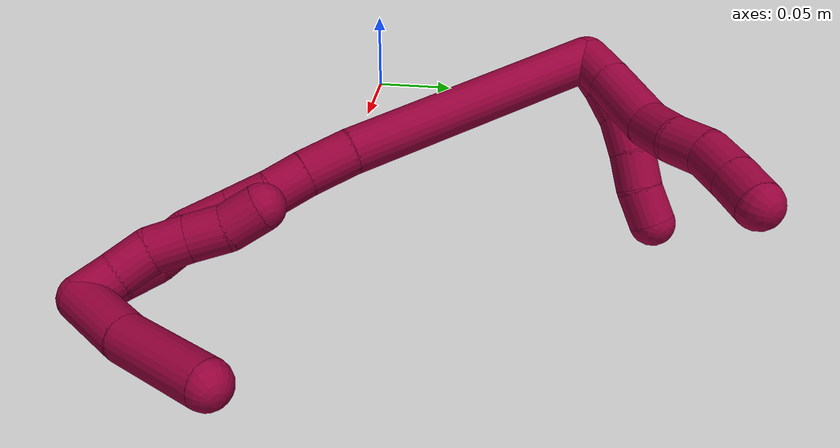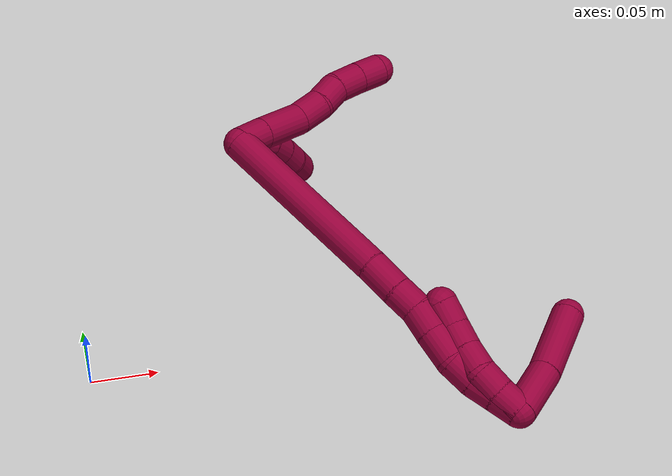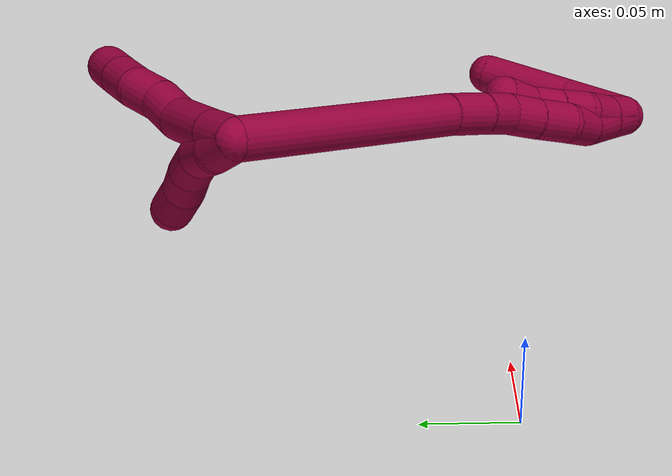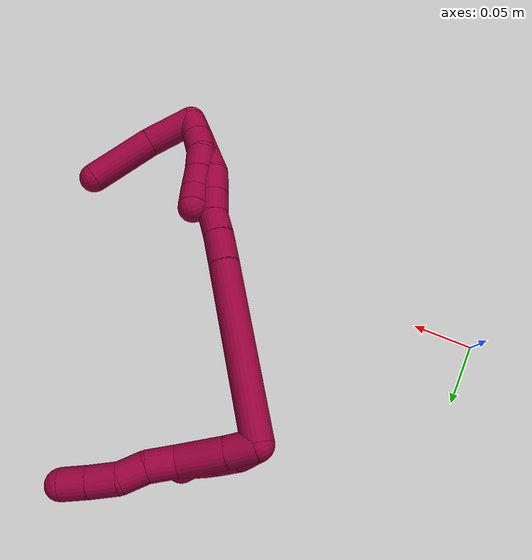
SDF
<sdf version="1.7">
 <world name="default">
  <model name="8">
   <static>0</static>
   <link name="8">
    <collision name="collision-cylinder-e_1_2_8">
     <pose>0.002093 -0.000808 0.011535 0.06992 0.179036 0.006278</pose>
     <geometry><cylinder><radius>0.0125</radius><length>0.023502</length></cylinder></geometry>
     <surface>
      <friction><ode><mu>1.16</mu><mu2>1.16</mu2><slip1>0</slip1><slip2>0</slip2></ode></friction>
      <contact><ode><kp>1e+06</kp><kd>1</kd><max_vel>0</max_vel><min_depth>0.001</min_depth></ode></contact>
     </surface>
    </collision>
    <visual name="visual-cylinder-e_1_2_8">
     <pose>0.002093 -0.000808 0.011535 0.06992 0.179036 0.006278</pose>
     <geometry><cylinder><radius>0.0125</radius><length>0.023502</length></cylinder></geometry>
     <material><ambient>0.584314 0 0.227451 1</ambient></material>
    </visual>
    <collision name="collision-cylinder-e_2_8_9">
     <pose>0.007811 -0.003916 0.041902 0.121554 0.188817 0.011524</pose>
     <geometry><cylinder><radius>0.0125</radius><length>0.038631</length></cylinder></geometry>
     <surface>
      <friction><ode><mu>1.16</mu><mu2>1.16</mu2><slip1>0</slip1><slip2>0</slip2></ode></friction>
      <contact><ode><kp>1e+06</kp><kd>1</kd><max_vel>0</max_vel><min_depth>0.001</min_depth></ode></contact>
     </surface>
    </collision>
    <visual name="visual-cylinder-e_2_8_9">
     <pose>0.007811 -0.003916 0.041902 0.121554 0.188817 0.011524</pose>
     <geometry><cylinder><radius>0.0125</radius><length>0.038631</length></cylinder></geometry>
     <material><ambient>0.584314 0 0.227451 1</ambient></material>
    </visual>
    <collision name="collision-cylinder-e_3_9_10">
     <pose>0.010314 -0.008375 0.071959 0.189929 -0.097839 -0.009327</pose>
     <geometry><cylinder><radius>0.0125</radius><length>0.022971</length></cylinder></geometry>
     <surface>
      <friction><ode><mu>1.16</mu><mu2>1.16</mu2><slip1>0</slip1><slip2>0</slip2></ode></friction>
      <contact><ode><kp>1e+06</kp><kd>1</kd><max_vel>0</max_vel><min_depth>0.001</min_depth></ode></contact>
     </surface>
    </collision>
    <visual name="visual-cylinder-e_3_9_10">
     <pose>0.010314 -0.008375 0.071959 0.189929 -0.097839 -0.009327</pose>
     <geometry><cylinder><radius>0.0125</radius><length>0.022971</length></cylinder></geometry>
     <material><ambient>0.584314 0 0.227451 1</ambient></material>
    </visual>
    <collision name="collision-cylinder-e_4_10_11">
     <pose>0.007932 -0.009996 0.093551 -0.05172 -0.120849 0.00313</pose>
     <geometry><cylinder><radius>0.0125</radius><length>0.020914</length></cylinder></geometry>
     <surface>
      <friction><ode><mu>1.16</mu><mu2>1.16</mu2><slip1>0</slip1><slip2>0</slip2></ode></friction>
      <contact><ode><kp>1e+06</kp><kd>1</kd><max_vel>0</max_vel><min_depth>0.001</min_depth></ode></contact>
     </surface>
    </collision>
    <visual name="visual-cylinder-e_4_10_11">
     <pose>0.007932 -0.009996 0.093551 -0.05172 -0.120849 0.00313</pose>
     <geometry><cylinder><radius>0.0125</radius><length>0.020914</length></cylinder></geometry>
     <material><ambient>0.584314 0 0.227451 1</ambient></material>
    </visual>
    <collision name="collision-cylinder-e_5_11_12">
     <pose>0.007672 -0.011716 0.115088 0.199356 0.087624 0.008769</pose>
     <geometry><cylinder><radius>0.0125</radius><length>0.022878</length></cylinder></geometry>
     <surface>
      <friction><ode><mu>1.16</mu><mu2>1.16</mu2><slip1>0</slip1><slip2>0</slip2></ode></friction>
      <contact><ode><kp>1e+06</kp><kd>1</kd><max_vel>0</max_vel><min_depth>0.001</min_depth></ode></contact>
     </surface>
    </collision>
    <visual name="visual-cylinder-e_5_11_12">
     <pose>0.007672 -0.011716 0.115088 0.199356 0.087624 0.008769</pose>
     <geometry><cylinder><radius>0.0125</radius><length>0.022878</length></cylinder></geometry>
     <material><ambient>0.584314 0 0.227451 1</ambient></material>
    </visual>
    <collision name="collision-cylinder-e_6_12_6">
     <pose>0.00983 -0.016436 0.136452 0.237093 0.109868 0.013099</pose>
     <geometry><cylinder><radius>0.0125</radius><length>0.021103</length></cylinder></geometry>
     <surface>
      <friction><ode><mu>1.16</mu><mu2>1.16</mu2><slip1>0</slip1><slip2>0</slip2></ode></friction>
      <contact><ode><kp>1e+06</kp><kd>1</kd><max_vel>0</max_vel><min_depth>0.001</min_depth></ode></contact>
     </surface>
    </collision>
    <visual name="visual-cylinder-e_6_12_6">
     <pose>0.00983 -0.016436 0.136452 0.237093 0.109868 0.013099</pose>
     <geometry><cylinder><radius>0.0125</radius><length>0.021103</length></cylinder></geometry>
     <material><ambient>0.584314 0 0.227451 1</ambient></material>
    </visual>
    <collision name="collision-cylinder-e_1_2_13">
     <pose>0.005495 0.002236 0.00805 -0.270894 0.581775 -0.081555</pose>
     <geometry><cylinder><radius>0.0125</radius><length>0.02</length></cylinder></geometry>
     <surface>
      <friction><ode><mu>1.16</mu><mu2>1.16</mu2><slip1>0</slip1><slip2>0</slip2></ode></friction>
      <contact><ode><kp>1e+06</kp><kd>1</kd><max_vel>0</max_vel><min_depth>0.001</min_depth></ode></contact>
     </surface>
    </collision>
    <visual name="visual-cylinder-e_1_2_13">
     <pose>0.005495 0.002236 0.00805 -0.270894 0.581775 -0.081555</pose>
     <geometry><cylinder><radius>0.0125</radius><length>0.02</length></cylinder></geometry>
     <material><ambient>0.584314 0 0.227451 1</ambient></material>
    </visual>
    <collision name="collision-cylinder-e_2_13_14">
     <pose>0.015983 0.004245 0.024762 0.026096 0.522813 0.006982</pose>
     <geometry><cylinder><radius>0.0125</radius><length>0.02</length></cylinder></geometry>
     <surface>
      <friction><ode><mu>1.16</mu><mu2>1.16</mu2><slip1>0</slip1><slip2>0</slip2></ode></friction>
      <contact><ode><kp>1e+06</kp><kd>1</kd><max_vel>0</max_vel><min_depth>0.001</min_depth></ode></contact>
     </surface>
    </collision>
    <visual name="visual-cylinder-e_2_13_14">
     <pose>0.015983 0.004245 0.024762 0.026096 0.522813 0.006982</pose>
     <geometry><cylinder><radius>0.0125</radius><length>0.02</length></cylinder></geometry>
     <material><ambient>0.584314 0 0.227451 1</ambient></material>
    </visual>
    <collision name="collision-cylinder-e_3_14_15">
     <pose>0.028462 0.004453 0.04004 -0.065488 0.845861 -0.029484</pose>
     <geometry><cylinder><radius>0.0125</radius><length>0.02</length></cylinder></geometry>
     <surface>
      <friction><ode><mu>1.16</mu><mu2>1.16</mu2><slip1>0</slip1><slip2>0</slip2></ode></friction>
      <contact><ode><kp>1e+06</kp><kd>1</kd><max_vel>0</max_vel><min_depth>0.001</min_depth></ode></contact>
     </surface>
    </collision>
    <visual name="visual-cylinder-e_3_14_15">
     <pose>0.028462 0.004453 0.04004 -0.065488 0.845861 -0.029484</pose>
     <geometry><cylinder><radius>0.0125</radius><length>0.02</length></cylinder></geometry>
     <material><ambient>0.584314 0 0.227451 1</ambient></material>
    </visual>
    <collision name="collision-cylinder-e_4_15_16">
     <pose>0.044186 0.005305 0.052309 -0.073706 0.968106 -0.038765</pose>
     <geometry><cylinder><radius>0.0125</radius><length>0.02</length></cylinder></geometry>
     <surface>
      <friction><ode><mu>1.16</mu><mu2>1.16</mu2><slip1>0</slip1><slip2>0</slip2></ode></friction>
      <contact><ode><kp>1e+06</kp><kd>1</kd><max_vel>0</max_vel><min_depth>0.001</min_depth></ode></contact>
     </surface>
    </collision>
    <visual name="visual-cylinder-e_4_15_16">
     <pose>0.044186 0.005305 0.052309 -0.073706 0.968106 -0.038765</pose>
     <geometry><cylinder><radius>0.0125</radius><length>0.02</length></cylinder></geometry>
     <material><ambient>0.584314 0 0.227451 1</ambient></material>
    </visual>
    <collision name="collision-cylinder-e_5_16_5">
     <pose>0.060194 0.007848 0.063887 -0.344518 0.889992 -0.165566</pose>
     <geometry><cylinder><radius>0.0125</radius><length>0.02</length></cylinder></geometry>
     <surface>
      <friction><ode><mu>1.16</mu><mu2>1.16</mu2><slip1>0</slip1><slip2>0</slip2></ode></friction>
      <contact><ode><kp>1e+06</kp><kd>1</kd><max_vel>0</max_vel><min_depth>0.001</min_depth></ode></contact>
     </surface>
    </collision>
    <visual name="visual-cylinder-e_5_16_5">
     <pose>0.060194 0.007848 0.063887 -0.344518 0.889992 -0.165566</pose>
     <geometry><cylinder><radius>0.0125</radius><length>0.02</length></cylinder></geometry>
     <material><ambient>0.584314 0 0.227451 1</ambient></material>
    </visual>
    <collision name="collision-cylinder-e_1_2_17">
     <pose>0.026861 -0.066695 -0.009108 1.70651 0.379678 0.433437</pose>
     <geometry><cylinder><radius>0.0125</radius><length>0.144952</length></cylinder></geometry>
     <surface>
      <friction><ode><mu>1.16</mu><mu2>1.16</mu2><slip1>0</slip1><slip2>0</slip2></ode></friction>
      <contact><ode><kp>1e+06</kp><kd>1</kd><max_vel>0</max_vel><min_depth>0.001</min_depth></ode></contact>
     </surface>
    </collision>
    <visual name="visual-cylinder-e_1_2_17">
     <pose>0.026861 -0.066695 -0.009108 1.70651 0.379678 0.433437</pose>
     <geometry><cylinder><radius>0.0125</radius><length>0.144952</length></cylinder></geometry>
     <material><ambient>0.584314 0 0.227451 1</ambient></material>
    </visual>
    <collision name="collision-cylinder-e_2_17_18">
     <pose>0.059717 -0.145427 -0.019695 1.69312 0.459123 0.516537</pose>
     <geometry><cylinder><radius>0.0125</radius><length>0.027056</length></cylinder></geometry>
     <surface>
      <friction><ode><mu>1.16</mu><mu2>1.16</mu2><slip1>0</slip1><slip2>0</slip2></ode></friction>
      <contact><ode><kp>1e+06</kp><kd>1</kd><max_vel>0</max_vel><min_depth>0.001</min_depth></ode></contact>
     </surface>
    </collision>
    <visual name="visual-cylinder-e_2_17_18">
     <pose>0.059717 -0.145427 -0.019695 1.69312 0.459123 0.516537</pose>
     <geometry><cylinder><radius>0.0125</radius><length>0.027056</length></cylinder></geometry>
     <material><ambient>0.584314 0 0.227451 1</ambient></material>
    </visual>
    <collision name="collision-cylinder-e_3_18_19">
     <pose>0.070558 -0.166286 -0.021666 1.62645 0.501583 0.529015</pose>
     <geometry><cylinder><radius>0.0125</radius><length>0.020155</length></cylinder></geometry>
     <surface>
      <friction><ode><mu>1.16</mu><mu2>1.16</mu2><slip1>0</slip1><slip2>0</slip2></ode></friction>
      <contact><ode><kp>1e+06</kp><kd>1</kd><max_vel>0</max_vel><min_depth>0.001</min_depth></ode></contact>
     </surface>
    </collision>
    <visual name="visual-cylinder-e_3_18_19">
     <pose>0.070558 -0.166286 -0.021666 1.62645 0.501583 0.529015</pose>
     <geometry><cylinder><radius>0.0125</radius><length>0.020155</length></cylinder></geometry>
     <material><ambient>0.584314 0 0.227451 1</ambient></material>
    </visual>
    <collision name="collision-cylinder-e_4_19_20">
     <pose>0.081107 -0.183699 -0.02498 1.88821 0.562745 0.759627</pose>
     <geometry><cylinder><radius>0.0125</radius><length>0.021381</length></cylinder></geometry>
     <surface>
      <friction><ode><mu>1.16</mu><mu2>1.16</mu2><slip1>0</slip1><slip2>0</slip2></ode></friction>
      <contact><ode><kp>1e+06</kp><kd>1</kd><max_vel>0</max_vel><min_depth>0.001</min_depth></ode></contact>
     </surface>
    </collision>
    <visual name="visual-cylinder-e_4_19_20">
     <pose>0.081107 -0.183699 -0.02498 1.88821 0.562745 0.759627</pose>
     <geometry><cylinder><radius>0.0125</radius><length>0.021381</length></cylinder></geometry>
     <material><ambient>0.584314 0 0.227451 1</ambient></material>
    </visual>
    <collision name="collision-cylinder-e_5_20_21">
     <pose>0.093129 -0.202454 -0.030766 1.85451 0.538077 0.704537</pose>
     <geometry><cylinder><radius>0.0125</radius><length>0.024659</length></cylinder></geometry>
     <surface>
      <friction><ode><mu>1.16</mu><mu2>1.16</mu2><slip1>0</slip1><slip2>0</slip2></ode></friction>
      <contact><ode><kp>1e+06</kp><kd>1</kd><max_vel>0</max_vel><min_depth>0.001</min_depth></ode></contact>
     </surface>
    </collision>
    <visual name="visual-cylinder-e_5_20_21">
     <pose>0.093129 -0.202454 -0.030766 1.85451 0.538077 0.704537</pose>
     <geometry><cylinder><radius>0.0125</radius><length>0.024659</length></cylinder></geometry>
     <material><ambient>0.584314 0 0.227451 1</ambient></material>
    </visual>
    <collision name="collision-cylinder-e_6_21_22">
     <pose>0.105853 -0.221364 -0.033207 1.51118 0.631255 0.59689</pose>
     <geometry><cylinder><radius>0.0125</radius><length>0.021707</length></cylinder></geometry>
     <surface>
      <friction><ode><mu>1.16</mu><mu2>1.16</mu2><slip1>0</slip1><slip2>0</slip2></ode></friction>
      <contact><ode><kp>1e+06</kp><kd>1</kd><max_vel>0</max_vel><min_depth>0.001</min_depth></ode></contact>
     </surface>
    </collision>
    <visual name="visual-cylinder-e_6_21_22">
     <pose>0.105853 -0.221364 -0.033207 1.51118 0.631255 0.59689</pose>
     <geometry><cylinder><radius>0.0125</radius><length>0.021707</length></cylinder></geometry>
     <material><ambient>0.584314 0 0.227451 1</ambient></material>
    </visual>
    <collision name="collision-cylinder-e_7_22_23">
     <pose>0.115674 -0.239501 -0.032153 1.51422 0.348361 0.329543</pose>
     <geometry><cylinder><radius>0.0125</radius><length>0.020014</length></cylinder></geometry>
     <surface>
      <friction><ode><mu>1.16</mu><mu2>1.16</mu2><slip1>0</slip1><slip2>0</slip2></ode></friction>
      <contact><ode><kp>1e+06</kp><kd>1</kd><max_vel>0</max_vel><min_depth>0.001</min_depth></ode></contact>
     </surface>
    </collision>
    <visual name="visual-cylinder-e_7_22_23">
     <pose>0.115674 -0.239501 -0.032153 1.51422 0.348361 0.329543</pose>
     <geometry><cylinder><radius>0.0125</radius><length>0.020014</length></cylinder></geometry>
     <material><ambient>0.584314 0 0.227451 1</ambient></material>
    </visual>
    <collision name="collision-cylinder-e_8_23_1">
     <pose>0.122832 -0.258179 -0.030904 1.49365 0.381981 0.354207</pose>
     <geometry><cylinder><radius>0.0125</radius><length>0.020076</length></cylinder></geometry>
     <surface>
      <friction><ode><mu>1.16</mu><mu2>1.16</mu2><slip1>0</slip1><slip2>0</slip2></ode></friction>
      <contact><ode><kp>1e+06</kp><kd>1</kd><max_vel>0</max_vel><min_depth>0.001</min_depth></ode></contact>
     </surface>
    </collision>
    <visual name="visual-cylinder-e_8_23_1">
     <pose>0.122832 -0.258179 -0.030904 1.49365 0.381981 0.354207</pose>
     <geometry><cylinder><radius>0.0125</radius><length>0.020076</length></cylinder></geometry>
     <material><ambient>0.584314 0 0.227451 1</ambient></material>
    </visual>
    <collision name="collision-cylinder-e_1_1_24">
     <pose>0.125028 -0.264157 -0.009317 -0.157214 -0.073036 0.005756</pose>
     <geometry><cylinder><radius>0.0125</radius><length>0.042372</length></cylinder></geometry>
     <surface>
      <friction><ode><mu>1.16</mu><mu2>1.16</mu2><slip1>0</slip1><slip2>0</slip2></ode></friction>
      <contact><ode><kp>1e+06</kp><kd>1</kd><max_vel>0</max_vel><min_depth>0.001</min_depth></ode></contact>
     </surface>
    </collision>
    <visual name="visual-cylinder-e_1_1_24">
     <pose>0.125028 -0.264157 -0.009317 -0.157214 -0.073036 0.005756</pose>
     <geometry><cylinder><radius>0.0125</radius><length>0.042372</length></cylinder></geometry>
     <material><ambient>0.584314 0 0.227451 1</ambient></material>
    </visual>
    <collision name="collision-cylinder-e_2_24_4">
     <pose>0.118743 -0.253199 0.038925 -0.272516 -0.165214 0.022703</pose>
     <geometry><cylinder><radius>0.0125</radius><length>0.057628</length></cylinder></geometry>
     <surface>
      <friction><ode><mu>1.16</mu><mu2>1.16</mu2><slip1>0</slip1><slip2>0</slip2></ode></friction>
      <contact><ode><kp>1e+06</kp><kd>1</kd><max_vel>0</max_vel><min_depth>0.001</min_depth></ode></contact>
     </surface>
    </collision>
    <visual name="visual-cylinder-e_2_24_4">
     <pose>0.118743 -0.253199 0.038925 -0.272516 -0.165214 0.022703</pose>
     <geometry><cylinder><radius>0.0125</radius><length>0.057628</length></cylinder></geometry>
     <material><ambient>0.584314 0 0.227451 1</ambient></material>
    </visual>
    <collision name="collision-cylinder-e_1_1_25">
     <pose>0.12141 -0.258904 -0.03038 -1.59348 -0.542614 0.554441</pose>
     <geometry><cylinder><radius>0.0125</radius><length>0.02</length></cylinder></geometry>
     <surface>
      <friction><ode><mu>1.16</mu><mu2>1.16</mu2><slip1>0</slip1><slip2>0</slip2></ode></friction>
      <contact><ode><kp>1e+06</kp><kd>1</kd><max_vel>0</max_vel><min_depth>0.001</min_depth></ode></contact>
     </surface>
    </collision>
    <visual name="visual-cylinder-e_1_1_25">
     <pose>0.12141 -0.258904 -0.03038 -1.59348 -0.542614 0.554441</pose>
     <geometry><cylinder><radius>0.0125</radius><length>0.02</length></cylinder></geometry>
     <material><ambient>0.584314 0 0.227451 1</ambient></material>
    </visual>
    <collision name="collision-cylinder-e_2_25_26">
     <pose>0.110422 -0.242226 -0.030136 -1.51686 -0.621704 0.590962</pose>
     <geometry><cylinder><radius>0.0125</radius><length>0.02</length></cylinder></geometry>
     <surface>
      <friction><ode><mu>1.16</mu><mu2>1.16</mu2><slip1>0</slip1><slip2>0</slip2></ode></friction>
      <contact><ode><kp>1e+06</kp><kd>1</kd><max_vel>0</max_vel><min_depth>0.001</min_depth></ode></contact>
     </surface>
    </collision>
    <visual name="visual-cylinder-e_2_25_26">
     <pose>0.110422 -0.242226 -0.030136 -1.51686 -0.621704 0.590962</pose>
     <geometry><cylinder><radius>0.0125</radius><length>0.02</length></cylinder></geometry>
     <material><ambient>0.584314 0 0.227451 1</ambient></material>
    </visual>
    <collision name="collision-cylinder-e_3_26_27">
     <pose>0.100316 -0.225735 -0.0263 -1.18528 -0.442481 0.300633</pose>
     <geometry><cylinder><radius>0.0125</radius><length>0.02</length></cylinder></geometry>
     <surface>
      <friction><ode><mu>1.16</mu><mu2>1.16</mu2><slip1>0</slip1><slip2>0</slip2></ode></friction>
      <contact><ode><kp>1e+06</kp><kd>1</kd><max_vel>0</max_vel><min_depth>0.001</min_depth></ode></contact>
     </surface>
    </collision>
    <visual name="visual-cylinder-e_3_26_27">
     <pose>0.100316 -0.225735 -0.0263 -1.18528 -0.442481 0.300633</pose>
     <geometry><cylinder><radius>0.0125</radius><length>0.02</length></cylinder></geometry>
     <material><ambient>0.584314 0 0.227451 1</ambient></material>
    </visual>
    <collision name="collision-cylinder-e_4_27_28">
     <pose>0.091741 -0.209364 -0.018705 -1.08757 -0.44374 0.271098</pose>
     <geometry><cylinder><radius>0.0125</radius><length>0.02</length></cylinder></geometry>
     <surface>
      <friction><ode><mu>1.16</mu><mu2>1.16</mu2><slip1>0</slip1><slip2>0</slip2></ode></friction>
      <contact><ode><kp>1e+06</kp><kd>1</kd><max_vel>0</max_vel><min_depth>0.001</min_depth></ode></contact>
     </surface>
    </collision>
    <visual name="visual-cylinder-e_4_27_28">
     <pose>0.091741 -0.209364 -0.018705 -1.08757 -0.44374 0.271098</pose>
     <geometry><cylinder><radius>0.0125</radius><length>0.02</length></cylinder></geometry>
     <material><ambient>0.584314 0 0.227451 1</ambient></material>
    </visual>
    <collision name="collision-cylinder-e_5_28_3">
     <pose>0.080967 -0.194333 -0.011587 -1.17704 -0.70501 0.481521</pose>
     <geometry><cylinder><radius>0.0125</radius><length>0.02</length></cylinder></geometry>
     <surface>
      <friction><ode><mu>1.16</mu><mu2>1.16</mu2><slip1>0</slip1><slip2>0</slip2></ode></friction>
      <contact><ode><kp>1e+06</kp><kd>1</kd><max_vel>0</max_vel><min_depth>0.001</min_depth></ode></contact>
     </surface>
    </collision>
    <visual name="visual-cylinder-e_5_28_3">
     <pose>0.080967 -0.194333 -0.011587 -1.17704 -0.70501 0.481521</pose>
     <geometry><cylinder><radius>0.0125</radius><length>0.02</length></cylinder></geometry>
     <material><ambient>0.584314 0 0.227451 1</ambient></material>
    </visual>
    <collision name="collision-sphere-3">
     <pose>0.074487 -0.1873 -0.008665 0 -0 0</pose>
     <geometry><sphere><radius>0.0125</radius></sphere></geometry>
     <surface>
      <friction><ode><mu>1.16</mu><mu2>1.16</mu2><slip1>0</slip1><slip2>0</slip2></ode></friction>
      <contact><ode><kp>1e+06</kp><kd>1</kd><max_vel>0</max_vel><min_depth>0.001</min_depth></ode></contact>
     </surface>
    </collision>
    <visual name="visual-sphere-3">
     <pose>0.074487 -0.1873 -0.008665 0 -0 0</pose>
     <geometry><sphere><radius>0.0125</radius></sphere></geometry>
     <material><ambient>0.584314 0 0.227451 1</ambient></material>
    </visual>
    <collision name="collision-sphere-28">
     <pose>0.087448 -0.201367 -0.014509 0 -0 0</pose>
     <geometry><sphere><radius>0.0125</radius></sphere></geometry>
     <surface>
      <friction><ode><mu>1.16</mu><mu2>1.16</mu2><slip1>0</slip1><slip2>0</slip2></ode></friction>
      <contact><ode><kp>1e+06</kp><kd>1</kd><max_vel>0</max_vel><min_depth>0.001</min_depth></ode></contact>
     </surface>
    </collision>
    <visual name="visual-sphere-28">
     <pose>0.087448 -0.201367 -0.014509 0 -0 0</pose>
     <geometry><sphere><radius>0.0125</radius></sphere></geometry>
     <material><ambient>0.584314 0 0.227451 1</ambient></material>
    </visual>
    <collision name="collision-sphere-27">
     <pose>0.096034 -0.217361 -0.022901 0 -0 0</pose>
     <geometry><sphere><radius>0.0125</radius></sphere></geometry>
     <surface>
      <friction><ode><mu>1.16</mu><mu2>1.16</mu2><slip1>0</slip1><slip2>0</slip2></ode></friction>
      <contact><ode><kp>1e+06</kp><kd>1</kd><max_vel>0</max_vel><min_depth>0.001</min_depth></ode></contact>
     </surface>
    </collision>
    <visual name="visual-sphere-27">
     <pose>0.096034 -0.217361 -0.022901 0 -0 0</pose>
     <geometry><sphere><radius>0.0125</radius></sphere></geometry>
     <material><ambient>0.584314 0 0.227451 1</ambient></material>
    </visual>
    <collision name="collision-sphere-26">
     <pose>0.104598 -0.234109 -0.029698 0 -0 0</pose>
     <geometry><sphere><radius>0.0125</radius></sphere></geometry>
     <surface>
      <friction><ode><mu>1.16</mu><mu2>1.16</mu2><slip1>0</slip1><slip2>0</slip2></ode></friction>
      <contact><ode><kp>1e+06</kp><kd>1</kd><max_vel>0</max_vel><min_depth>0.001</min_depth></ode></contact>
     </surface>
    </collision>
    <visual name="visual-sphere-26">
     <pose>0.104598 -0.234109 -0.029698 0 -0 0</pose>
     <geometry><sphere><radius>0.0125</radius></sphere></geometry>
     <material><ambient>0.584314 0 0.227451 1</ambient></material>
    </visual>
    <collision name="collision-sphere-25">
     <pose>0.116246 -0.250343 -0.030574 0 -0 0</pose>
     <geometry><sphere><radius>0.0125</radius></sphere></geometry>
     <surface>
      <friction><ode><mu>1.16</mu><mu2>1.16</mu2><slip1>0</slip1><slip2>0</slip2></ode></friction>
      <contact><ode><kp>1e+06</kp><kd>1</kd><max_vel>0</max_vel><min_depth>0.001</min_depth></ode></contact>
     </surface>
    </collision>
    <visual name="visual-sphere-25">
     <pose>0.116246 -0.250343 -0.030574 0 -0 0</pose>
     <geometry><sphere><radius>0.0125</radius></sphere></geometry>
     <material><ambient>0.584314 0 0.227451 1</ambient></material>
    </visual>
    <collision name="collision-sphere-4">
     <pose>0.114004 -0.24555 0.066298 0 -0 0</pose>
     <geometry><sphere><radius>0.0125</radius></sphere></geometry>
     <surface>
      <friction><ode><mu>1.16</mu><mu2>1.16</mu2><slip1>0</slip1><slip2>0</slip2></ode></friction>
      <contact><ode><kp>1e+06</kp><kd>1</kd><max_vel>0</max_vel><min_depth>0.001</min_depth></ode></contact>
     </surface>
    </collision>
    <visual name="visual-sphere-4">
     <pose>0.114004 -0.24555 0.066298 0 -0 0</pose>
     <geometry><sphere><radius>0.0125</radius></sphere></geometry>
     <material><ambient>0.584314 0 0.227451 1</ambient></material>
    </visual>
    <collision name="collision-sphere-24">
     <pose>0.123482 -0.260849 0.011552 0 -0 0</pose>
     <geometry><sphere><radius>0.0125</radius></sphere></geometry>
     <surface>
      <friction><ode><mu>1.16</mu><mu2>1.16</mu2><slip1>0</slip1><slip2>0</slip2></ode></friction>
      <contact><ode><kp>1e+06</kp><kd>1</kd><max_vel>0</max_vel><min_depth>0.001</min_depth></ode></contact>
     </surface>
    </collision>
    <visual name="visual-sphere-24">
     <pose>0.123482 -0.260849 0.011552 0 -0 0</pose>
     <geometry><sphere><radius>0.0125</radius></sphere></geometry>
     <material><ambient>0.584314 0 0.227451 1</ambient></material>
    </visual>
    <collision name="collision-sphere-1">
     <pose>0.126574 -0.267466 -0.030186 0 -0 0</pose>
     <geometry><sphere><radius>0.0125</radius></sphere></geometry>
     <surface>
      <friction><ode><mu>1.16</mu><mu2>1.16</mu2><slip1>0</slip1><slip2>0</slip2></ode></friction>
      <contact><ode><kp>1e+06</kp><kd>1</kd><max_vel>0</max_vel><min_depth>0.001</min_depth></ode></contact>
     </surface>
    </collision>
    <visual name="visual-sphere-1">
     <pose>0.126574 -0.267466 -0.030186 0 -0 0</pose>
     <geometry><sphere><radius>0.0125</radius></sphere></geometry>
     <material><ambient>0.584314 0 0.227451 1</ambient></material>
    </visual>
    <collision name="collision-sphere-23">
     <pose>0.11909 -0.248892 -0.031622 0 -0 0</pose>
     <geometry><sphere><radius>0.0125</radius></sphere></geometry>
     <surface>
      <friction><ode><mu>1.16</mu><mu2>1.16</mu2><slip1>0</slip1><slip2>0</slip2></ode></friction>
      <contact><ode><kp>1e+06</kp><kd>1</kd><max_vel>0</max_vel><min_depth>0.001</min_depth></ode></contact>
     </surface>
    </collision>
    <visual name="visual-sphere-23">
     <pose>0.11909 -0.248892 -0.031622 0 -0 0</pose>
     <geometry><sphere><radius>0.0125</radius></sphere></geometry>
     <material><ambient>0.584314 0 0.227451 1</ambient></material>
    </visual>
    <collision name="collision-sphere-22">
     <pose>0.112258 -0.23011 -0.032685 0 -0 0</pose>
     <geometry><sphere><radius>0.0125</radius></sphere></geometry>
     <surface>
      <friction><ode><mu>1.16</mu><mu2>1.16</mu2><slip1>0</slip1><slip2>0</slip2></ode></friction>
      <contact><ode><kp>1e+06</kp><kd>1</kd><max_vel>0</max_vel><min_depth>0.001</min_depth></ode></contact>
     </surface>
    </collision>
    <visual name="visual-sphere-22">
     <pose>0.112258 -0.23011 -0.032685 0 -0 0</pose>
     <geometry><sphere><radius>0.0125</radius></sphere></geometry>
     <material><ambient>0.584314 0 0.227451 1</ambient></material>
    </visual>
    <collision name="collision-sphere-21">
     <pose>0.099448 -0.212618 -0.03373 0 -0 0</pose>
     <geometry><sphere><radius>0.0125</radius></sphere></geometry>
     <surface>
      <friction><ode><mu>1.16</mu><mu2>1.16</mu2><slip1>0</slip1><slip2>0</slip2></ode></friction>
      <contact><ode><kp>1e+06</kp><kd>1</kd><max_vel>0</max_vel><min_depth>0.001</min_depth></ode></contact>
     </surface>
    </collision>
    <visual name="visual-sphere-21">
     <pose>0.099448 -0.212618 -0.03373 0 -0 0</pose>
     <geometry><sphere><radius>0.0125</radius></sphere></geometry>
     <material><ambient>0.584314 0 0.227451 1</ambient></material>
    </visual>
    <collision name="collision-sphere-12">
     <pose>0.008673 -0.013973 0.126257 0 -0 0</pose>
     <geometry><sphere><radius>0.0125</radius></sphere></geometry>
     <surface>
      <friction><ode><mu>1.16</mu><mu2>1.16</mu2><slip1>0</slip1><slip2>0</slip2></ode></friction>
      <contact><ode><kp>1e+06</kp><kd>1</kd><max_vel>0</max_vel><min_depth>0.001</min_depth></ode></contact>
     </surface>
    </collision>
    <visual name="visual-sphere-12">
     <pose>0.008673 -0.013973 0.126257 0 -0 0</pose>
     <geometry><sphere><radius>0.0125</radius></sphere></geometry>
     <material><ambient>0.584314 0 0.227451 1</ambient></material>
    </visual>
    <collision name="collision-sphere-11">
     <pose>0.006671 -0.009459 0.103918 0 -0 0</pose>
     <geometry><sphere><radius>0.0125</radius></sphere></geometry>
     <surface>
      <friction><ode><mu>1.16</mu><mu2>1.16</mu2><slip1>0</slip1><slip2>0</slip2></ode></friction>
      <contact><ode><kp>1e+06</kp><kd>1</kd><max_vel>0</max_vel><min_depth>0.001</min_depth></ode></contact>
     </surface>
    </collision>
    <visual name="visual-sphere-11">
     <pose>0.006671 -0.009459 0.103918 0 -0 0</pose>
     <geometry><sphere><radius>0.0125</radius></sphere></geometry>
     <material><ambient>0.584314 0 0.227451 1</ambient></material>
    </visual>
    <collision name="collision-sphere-10">
     <pose>0.009192 -0.010533 0.083184 0 -0 0</pose>
     <geometry><sphere><radius>0.0125</radius></sphere></geometry>
     <surface>
      <friction><ode><mu>1.16</mu><mu2>1.16</mu2><slip1>0</slip1><slip2>0</slip2></ode></friction>
      <contact><ode><kp>1e+06</kp><kd>1</kd><max_vel>0</max_vel><min_depth>0.001</min_depth></ode></contact>
     </surface>
    </collision>
    <visual name="visual-sphere-10">
     <pose>0.009192 -0.010533 0.083184 0 -0 0</pose>
     <geometry><sphere><radius>0.0125</radius></sphere></geometry>
     <material><ambient>0.584314 0 0.227451 1</ambient></material>
    </visual>
    <collision name="collision-sphere-9">
     <pose>0.011436 -0.006217 0.060734 0 -0 0</pose>
     <geometry><sphere><radius>0.0125</radius></sphere></geometry>
     <surface>
      <friction><ode><mu>1.16</mu><mu2>1.16</mu2><slip1>0</slip1><slip2>0</slip2></ode></friction>
      <contact><ode><kp>1e+06</kp><kd>1</kd><max_vel>0</max_vel><min_depth>0.001</min_depth></ode></contact>
     </surface>
    </collision>
    <visual name="visual-sphere-9">
     <pose>0.011436 -0.006217 0.060734 0 -0 0</pose>
     <geometry><sphere><radius>0.0125</radius></sphere></geometry>
     <material><ambient>0.584314 0 0.227451 1</ambient></material>
    </visual>
    <collision name="collision-sphere-2">
     <geometry><sphere><radius>0.0125</radius></sphere></geometry>
     <surface>
      <friction><ode><mu>1.16</mu><mu2>1.16</mu2><slip1>0</slip1><slip2>0</slip2></ode></friction>
      <contact><ode><kp>1e+06</kp><kd>1</kd><max_vel>0</max_vel><min_depth>0.001</min_depth></ode></contact>
     </surface>
    </collision>
    <visual name="visual-sphere-2">
     <geometry><sphere><radius>0.0125</radius></sphere></geometry>
     <material><ambient>0.584314 0 0.227451 1</ambient></material>
    </visual>
    <collision name="collision-sphere-19">
     <pose>0.075404 -0.175109 -0.022158 0 -0 0</pose>
     <geometry><sphere><radius>0.0125</radius></sphere></geometry>
     <surface>
      <friction><ode><mu>1.16</mu><mu2>1.16</mu2><slip1>0</slip1><slip2>0</slip2></ode></friction>
      <contact><ode><kp>1e+06</kp><kd>1</kd><max_vel>0</max_vel><min_depth>0.001</min_depth></ode></contact>
     </surface>
    </collision>
    <visual name="visual-sphere-19">
     <pose>0.075404 -0.175109 -0.022158 0 -0 0</pose>
     <geometry><sphere><radius>0.0125</radius></sphere></geometry>
     <material><ambient>0.584314 0 0.227451 1</ambient></material>
    </visual>
    <collision name="collision-sphere-8">
     <pose>0.004185 -0.001616 0.02307 0 -0 0</pose>
     <geometry><sphere><radius>0.0125</radius></sphere></geometry>
     <surface>
      <friction><ode><mu>1.16</mu><mu2>1.16</mu2><slip1>0</slip1><slip2>0</slip2></ode></friction>
      <contact><ode><kp>1e+06</kp><kd>1</kd><max_vel>0</max_vel><min_depth>0.001</min_depth></ode></contact>
     </surface>
    </collision>
    <visual name="visual-sphere-8">
     <pose>0.004185 -0.001616 0.02307 0 -0 0</pose>
     <geometry><sphere><radius>0.0125</radius></sphere></geometry>
     <material><ambient>0.584314 0 0.227451 1</ambient></material>
    </visual>
    <collision name="collision-sphere-6">
     <pose>0.010987 -0.018899 0.146647 0 -0 0</pose>
     <geometry><sphere><radius>0.0125</radius></sphere></geometry>
     <surface>
      <friction><ode><mu>1.16</mu><mu2>1.16</mu2><slip1>0</slip1><slip2>0</slip2></ode></friction>
      <contact><ode><kp>1e+06</kp><kd>1</kd><max_vel>0</max_vel><min_depth>0.001</min_depth></ode></contact>
     </surface>
    </collision>
    <visual name="visual-sphere-6">
     <pose>0.010987 -0.018899 0.146647 0 -0 0</pose>
     <geometry><sphere><radius>0.0125</radius></sphere></geometry>
     <material><ambient>0.584314 0 0.227451 1</ambient></material>
    </visual>
    <collision name="collision-sphere-13">
     <pose>0.01099 0.004471 0.0161 0 -0 0</pose>
     <geometry><sphere><radius>0.0125</radius></sphere></geometry>
     <surface>
      <friction><ode><mu>1.16</mu><mu2>1.16</mu2><slip1>0</slip1><slip2>0</slip2></ode></friction>
      <contact><ode><kp>1e+06</kp><kd>1</kd><max_vel>0</max_vel><min_depth>0.001</min_depth></ode></contact>
     </surface>
    </collision>
    <visual name="visual-sphere-13">
     <pose>0.01099 0.004471 0.0161 0 -0 0</pose>
     <geometry><sphere><radius>0.0125</radius></sphere></geometry>
     <material><ambient>0.584314 0 0.227451 1</ambient></material>
    </visual>
    <collision name="collision-sphere-14">
     <pose>0.020977 0.004019 0.033423 0 -0 0</pose>
     <geometry><sphere><radius>0.0125</radius></sphere></geometry>
     <surface>
      <friction><ode><mu>1.16</mu><mu2>1.16</mu2><slip1>0</slip1><slip2>0</slip2></ode></friction>
      <contact><ode><kp>1e+06</kp><kd>1</kd><max_vel>0</max_vel><min_depth>0.001</min_depth></ode></contact>
     </surface>
    </collision>
    <visual name="visual-sphere-14">
     <pose>0.020977 0.004019 0.033423 0 -0 0</pose>
     <geometry><sphere><radius>0.0125</radius></sphere></geometry>
     <material><ambient>0.584314 0 0.227451 1</ambient></material>
    </visual>
    <collision name="collision-sphere-15">
     <pose>0.035947 0.004887 0.046656 0 -0 0</pose>
     <geometry><sphere><radius>0.0125</radius></sphere></geometry>
     <surface>
      <friction><ode><mu>1.16</mu><mu2>1.16</mu2><slip1>0</slip1><slip2>0</slip2></ode></friction>
      <contact><ode><kp>1e+06</kp><kd>1</kd><max_vel>0</max_vel><min_depth>0.001</min_depth></ode></contact>
     </surface>
    </collision>
    <visual name="visual-sphere-15">
     <pose>0.035947 0.004887 0.046656 0 -0 0</pose>
     <geometry><sphere><radius>0.0125</radius></sphere></geometry>
     <material><ambient>0.584314 0 0.227451 1</ambient></material>
    </visual>
    <collision name="collision-sphere-16">
     <pose>0.052424 0.005722 0.057963 0 -0 0</pose>
     <geometry><sphere><radius>0.0125</radius></sphere></geometry>
     <surface>
      <friction><ode><mu>1.16</mu><mu2>1.16</mu2><slip1>0</slip1><slip2>0</slip2></ode></friction>
      <contact><ode><kp>1e+06</kp><kd>1</kd><max_vel>0</max_vel><min_depth>0.001</min_depth></ode></contact>
     </surface>
    </collision>
    <visual name="visual-sphere-16">
     <pose>0.052424 0.005722 0.057963 0 -0 0</pose>
     <geometry><sphere><radius>0.0125</radius></sphere></geometry>
     <material><ambient>0.584314 0 0.227451 1</ambient></material>
    </visual>
    <collision name="collision-sphere-5">
     <pose>0.067965 0.009974 0.069811 0 -0 0</pose>
     <geometry><sphere><radius>0.0125</radius></sphere></geometry>
     <surface>
      <friction><ode><mu>1.16</mu><mu2>1.16</mu2><slip1>0</slip1><slip2>0</slip2></ode></friction>
      <contact><ode><kp>1e+06</kp><kd>1</kd><max_vel>0</max_vel><min_depth>0.001</min_depth></ode></contact>
     </surface>
    </collision>
    <visual name="visual-sphere-5">
     <pose>0.067965 0.009974 0.069811 0 -0 0</pose>
     <geometry><sphere><radius>0.0125</radius></sphere></geometry>
     <material><ambient>0.584314 0 0.227451 1</ambient></material>
    </visual>
    <collision name="collision-sphere-17">
     <pose>0.053722 -0.133391 -0.018216 0 -0 0</pose>
     <geometry><sphere><radius>0.0125</radius></sphere></geometry>
     <surface>
      <friction><ode><mu>1.16</mu><mu2>1.16</mu2><slip1>0</slip1><slip2>0</slip2></ode></friction>
      <contact><ode><kp>1e+06</kp><kd>1</kd><max_vel>0</max_vel><min_depth>0.001</min_depth></ode></contact>
     </surface>
    </collision>
    <visual name="visual-sphere-17">
     <pose>0.053722 -0.133391 -0.018216 0 -0 0</pose>
     <geometry><sphere><radius>0.0125</radius></sphere></geometry>
     <material><ambient>0.584314 0 0.227451 1</ambient></material>
    </visual>
    <collision name="collision-sphere-18">
     <pose>0.065712 -0.157464 -0.021175 0 -0 0</pose>
     <geometry><sphere><radius>0.0125</radius></sphere></geometry>
     <surface>
      <friction><ode><mu>1.16</mu><mu2>1.16</mu2><slip1>0</slip1><slip2>0</slip2></ode></friction>
      <contact><ode><kp>1e+06</kp><kd>1</kd><max_vel>0</max_vel><min_depth>0.001</min_depth></ode></contact>
     </surface>
    </collision>
    <visual name="visual-sphere-18">
     <pose>0.065712 -0.157464 -0.021175 0 -0 0</pose>
     <geometry><sphere><radius>0.0125</radius></sphere></geometry>
     <material><ambient>0.584314 0 0.227451 1</ambient></material>
    </visual>
    <collision name="collision-sphere-20">
     <pose>0.08681 -0.19229 -0.027802 0 -0 0</pose>
     <geometry><sphere><radius>0.0125</radius></sphere></geometry>
     <surface>
      <friction><ode><mu>1.16</mu><mu2>1.16</mu2><slip1>0</slip1><slip2>0</slip2></ode></friction>
      <contact><ode><kp>1e+06</kp><kd>1</kd><max_vel>0</max_vel><min_depth>0.001</min_depth></ode></contact>
     </surface>
    </collision>
    <visual name="visual-sphere-20">
     <pose>0.08681 -0.19229 -0.027802 0 -0 0</pose>
     <geometry><sphere><radius>0.0125</radius></sphere></geometry>
     <material><ambient>0.584314 0 0.227451 1</ambient></material>
    </visual>
    <inertial>
     <pose>0.059336 -0.119675 0.011642 0 -0 0</pose>
     <mass>0.75</mass>
     <inertia>
      <ixx>0.000401</ixx>
      <ixy>0</ixy>
      <ixz>0</ixz>
      <iyy>0.000157</iyy>
      <iyz>0</iyz>
      <izz>0.000162</izz>
     </inertia>
    </inertial>
   </link>
   <pose>0.136925 0.140891 0.085705 -1.87341 1.37837 -1.15192</pose>
  </model>
 </world>
</sdf>
